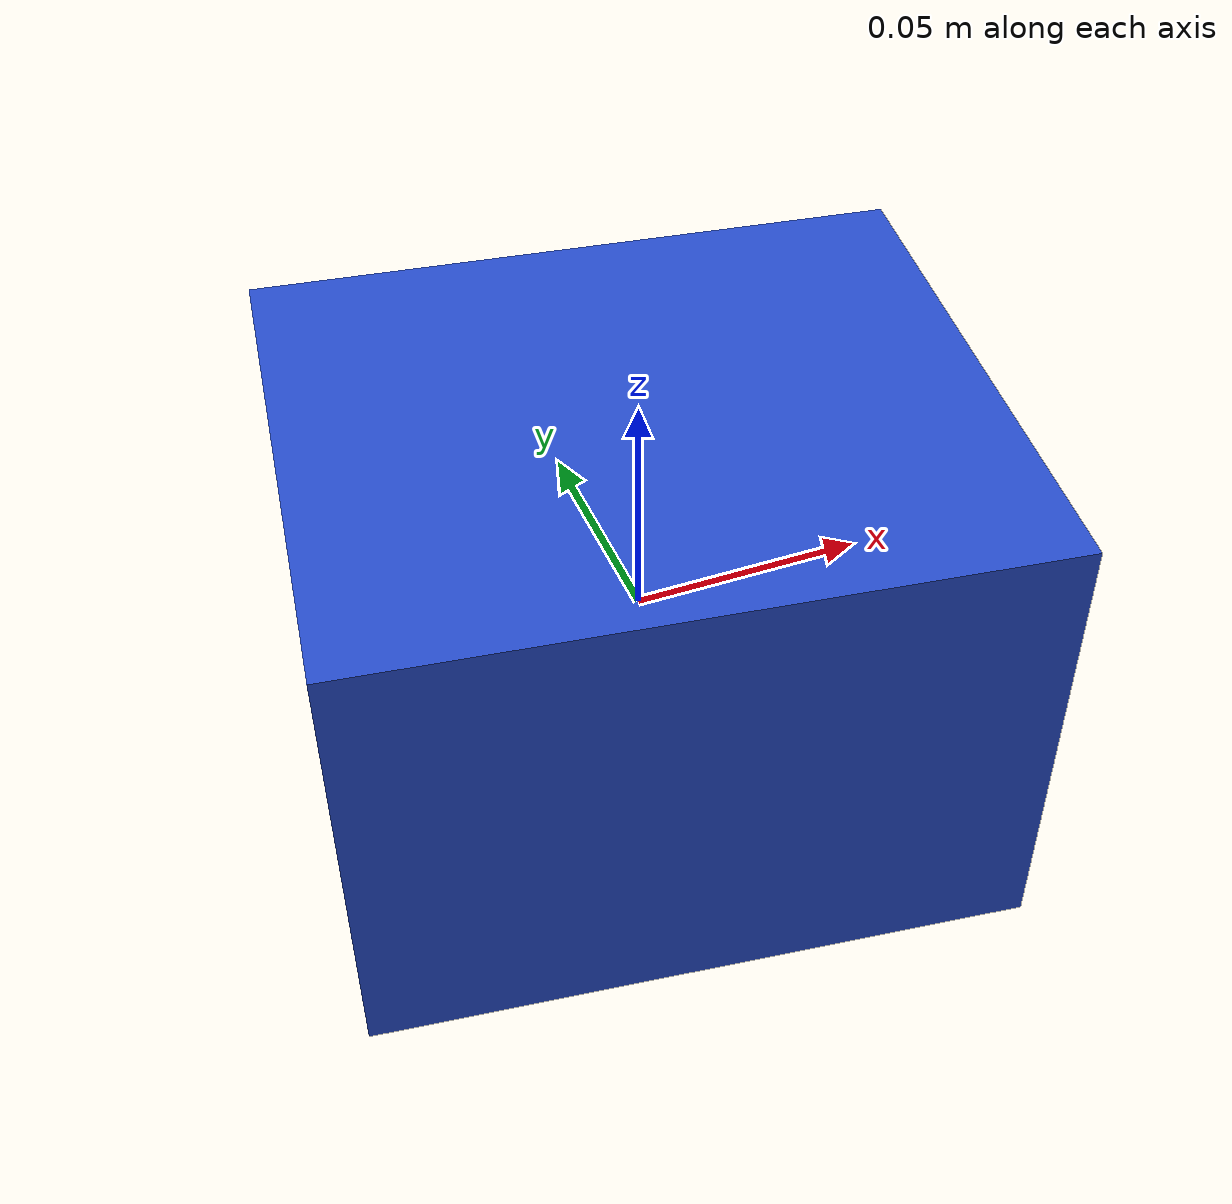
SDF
<sdf version="1.6"><model name="model_10"><static>true</static><link name="link"><pose>0 0 0 0 0 1.4300240394189179</pose><collision name="collision"><geometry><box><size>0.11848787950438354 0.1386184278937087 0.1</size></box></geometry></collision><visual name="visual"><geometry><box><size>0.11848787950438354 0.1386184278937087 0.1</size></box></geometry><material><script><name>Gazebo/Blue</name><uri>file://media/materials/scripts/gazebo.material</uri></script></material></visual></link></model></sdf>
